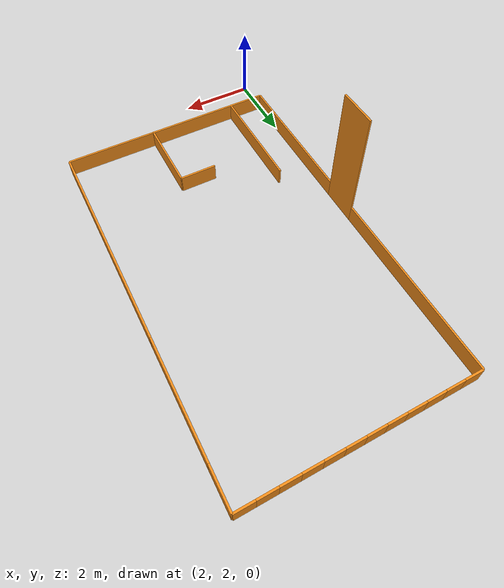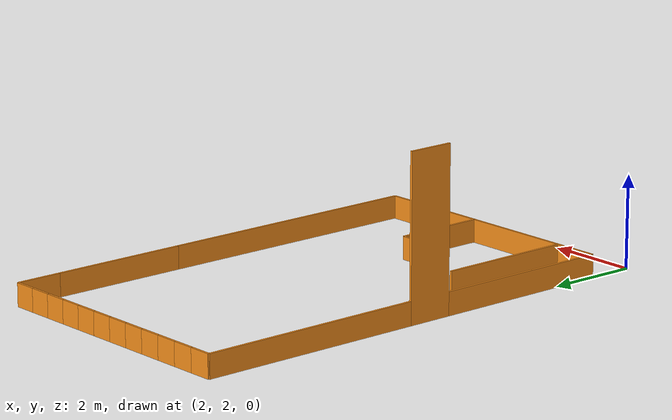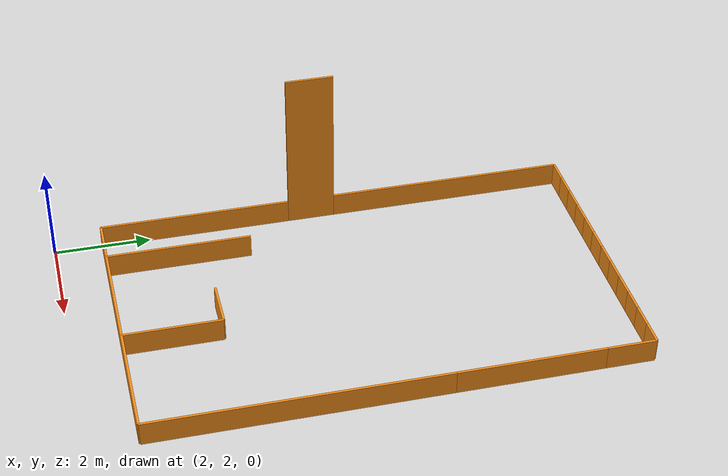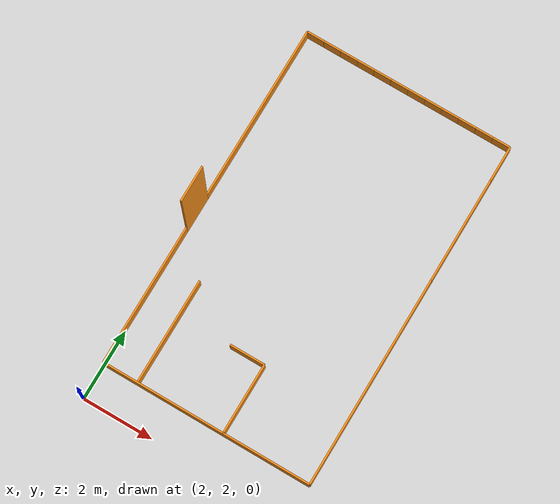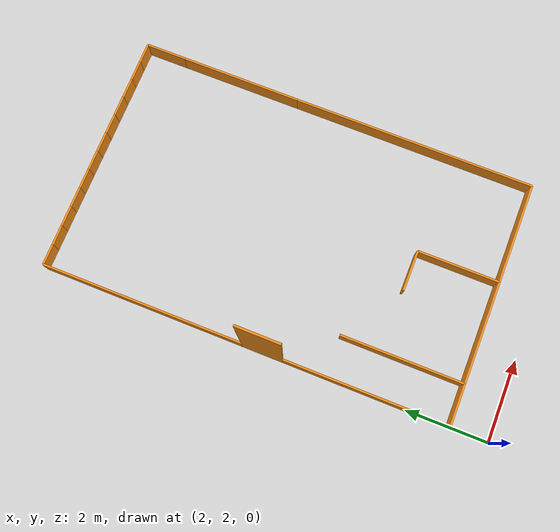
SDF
<sdf version="1.6">
 <world name="default">
  <model name="box_22">
   <pose>2.0 7.5 1.75 0 0 1.5707963267948966</pose>
   <link name="link">
    <inertial>
     <mass>1</mass>
     <inertia><ixx>0</ixx><ixy>0</ixy><ixz>0</ixz><iyy>0</iyy><iyz>0</iyz><izz>0</izz></inertia>
    </inertial>
    <collision name="collision"><geometry><box><size>1.0 0.05 3.5</size></box></geometry></collision>
    <visual name="visual">
     <geometry><box><size>1.0 0.05 3.5</size></box></geometry>
     <material>
      <script><name>Gazebo/Orange</name><uri>file://media/materials/scripts/gazebo.material</uri></script>
     </material>
    </visual>
   </link>
   <static>1</static>
  </model>
  <model name="box_21">
   <pose>5.5 4.0 0.25 0 0 1.5707963267948966</pose>
   <link name="link">
    <inertial>
     <mass>1</mass>
     <inertia><ixx>0</ixx><ixy>0</ixy><ixz>0</ixz><iyy>0</iyy><iyz>0</iyz><izz>0</izz></inertia>
    </inertial>
    <collision name="collision"><geometry><box><size>2.0 0.05 0.5</size></box></geometry></collision>
    <visual name="visual">
     <geometry><box><size>2.0 0.05 0.5</size></box></geometry>
     <material>
      <script><name>Gazebo/Orange</name><uri>file://media/materials/scripts/gazebo.material</uri></script>
     </material>
    </visual>
   </link>
   <static>1</static>
  </model>
  <model name="box_20">
   <pose>5.0 5.0 0.25 0 0 -3.141592653589793</pose>
   <link name="link">
    <inertial>
     <mass>1</mass>
     <inertia><ixx>0</ixx><ixy>0</ixy><ixz>0</ixz><iyy>0</iyy><iyz>0</iyz><izz>0</izz></inertia>
    </inertial>
    <collision name="collision"><geometry><box><size>1.0 0.05 0.5</size></box></geometry></collision>
    <visual name="visual">
     <geometry><box><size>1.0 0.05 0.5</size></box></geometry>
     <material>
      <script><name>Gazebo/Orange</name><uri>file://media/materials/scripts/gazebo.material</uri></script>
     </material>
    </visual>
   </link>
   <static>1</static>
  </model>
  <model name="box_19">
   <pose>3.0 4.5 0.25 0 0 1.5707963267948966</pose>
   <link name="link">
    <inertial>
     <mass>1</mass>
     <inertia><ixx>0</ixx><ixy>0</ixy><ixz>0</ixz><iyy>0</iyy><iyz>0</iyz><izz>0</izz></inertia>
    </inertial>
    <collision name="collision"><geometry><box><size>3.0 0.05 0.5</size></box></geometry></collision>
    <visual name="visual">
     <geometry><box><size>3.0 0.05 0.5</size></box></geometry>
     <material>
      <script><name>Gazebo/Orange</name><uri>file://media/materials/scripts/gazebo.material</uri></script>
     </material>
    </visual>
   </link>
   <static>1</static>
  </model>
  <model name="box_18">
   <pose>2.0 10.5 0.25 0 0 1.5707963267948966</pose>
   <link name="link">
    <inertial>
     <mass>1</mass>
     <inertia><ixx>0</ixx><ixy>0</ixy><ixz>0</ixz><iyy>0</iyy><iyz>0</iyz><izz>0</izz></inertia>
    </inertial>
    <collision name="collision"><geometry><box><size>5.0 0.05 0.5</size></box></geometry></collision>
    <visual name="visual">
     <geometry><box><size>5.0 0.05 0.5</size></box></geometry>
     <material>
      <script><name>Gazebo/Orange</name><uri>file://media/materials/scripts/gazebo.material</uri></script>
     </material>
    </visual>
   </link>
   <static>1</static>
  </model>
  <model name="box_17">
   <pose>2.0 5.0 0.25 0 0 -1.5707963267948966</pose>
   <link name="link">
    <inertial>
     <mass>1</mass>
     <inertia><ixx>0</ixx><ixy>0</ixy><ixz>0</ixz><iyy>0</iyy><iyz>0</iyz><izz>0</izz></inertia>
    </inertial>
    <collision name="collision"><geometry><box><size>4.0 0.05 0.5</size></box></geometry></collision>
    <visual name="visual">
     <geometry><box><size>4.0 0.05 0.5</size></box></geometry>
     <material>
      <script><name>Gazebo/Orange</name><uri>file://media/materials/scripts/gazebo.material</uri></script>
     </material>
    </visual>
   </link>
   <static>1</static>
  </model>
  <model name="box_16">
   <pose>5.0 3.0 0.25 0 0 -0.0</pose>
   <link name="link">
    <inertial>
     <mass>1</mass>
     <inertia><ixx>0</ixx><ixy>0</ixy><ixz>0</ixz><iyy>0</iyy><iyz>0</iyz><izz>0</izz></inertia>
    </inertial>
    <collision name="collision"><geometry><box><size>6.0 0.05 0.5</size></box></geometry></collision>
    <visual name="visual">
     <geometry><box><size>6.0 0.05 0.5</size></box></geometry>
     <material>
      <script><name>Gazebo/Orange</name><uri>file://media/materials/scripts/gazebo.material</uri></script>
     </material>
    </visual>
   </link>
   <static>1</static>
  </model>
  <model name="box_15">
   <pose>8.0 6.0 0.25 0 0 1.5707963267948966</pose>
   <link name="link">
    <inertial>
     <mass>1</mass>
     <inertia><ixx>0</ixx><ixy>0</ixy><ixz>0</ixz><iyy>0</iyy><iyz>0</iyz><izz>0</izz></inertia>
    </inertial>
    <collision name="collision"><geometry><box><size>6.0 0.05 0.5</size></box></geometry></collision>
    <visual name="visual">
     <geometry><box><size>6.0 0.05 0.5</size></box></geometry>
     <material>
      <script><name>Gazebo/Orange</name><uri>file://media/materials/scripts/gazebo.material</uri></script>
     </material>
    </visual>
   </link>
   <static>1</static>
  </model>
  <model name="box_14">
   <pose>8.0 10.5 0.25 0 0 1.5707963267948966</pose>
   <link name="link">
    <inertial>
     <mass>1</mass>
     <inertia><ixx>0</ixx><ixy>0</ixy><ixz>0</ixz><iyy>0</iyy><iyz>0</iyz><izz>0</izz></inertia>
    </inertial>
    <collision name="collision"><geometry><box><size>3.0 0.05 0.5</size></box></geometry></collision>
    <visual name="visual">
     <geometry><box><size>3.0 0.05 0.5</size></box></geometry>
     <material>
      <script><name>Gazebo/Orange</name><uri>file://media/materials/scripts/gazebo.material</uri></script>
     </material>
    </visual>
   </link>
   <static>1</static>
  </model>
  <model name="box_13">
   <pose>8.0 12.5 0.25 0 0 1.5707963267948966</pose>
   <link name="link">
    <inertial>
     <mass>1</mass>
     <inertia><ixx>0</ixx><ixy>0</ixy><ixz>0</ixz><iyy>0</iyy><iyz>0</iyz><izz>0</izz></inertia>
    </inertial>
    <collision name="collision"><geometry><box><size>1.0 0.05 0.5</size></box></geometry></collision>
    <visual name="visual">
     <geometry><box><size>1.0 0.05 0.5</size></box></geometry>
     <material>
      <script><name>Gazebo/Orange</name><uri>file://media/materials/scripts/gazebo.material</uri></script>
     </material>
    </visual>
   </link>
   <static>1</static>
  </model>
  <model name="box_12">
   <pose>7.75 13.0 0.25 0 0 -3.141592653589793</pose>
   <link name="link">
    <inertial>
     <mass>1</mass>
     <inertia><ixx>0</ixx><ixy>0</ixy><ixz>0</ixz><iyy>0</iyy><iyz>0</iyz><izz>0</izz></inertia>
    </inertial>
    <collision name="collision"><geometry><box><size>0.5 0.05 0.5</size></box></geometry></collision>
    <visual name="visual">
     <geometry><box><size>0.5 0.05 0.5</size></box></geometry>
     <material>
      <script><name>Gazebo/Orange</name><uri>file://media/materials/scripts/gazebo.material</uri></script>
     </material>
    </visual>
   </link>
   <static>1</static>
  </model>
  <model name="box_11">
   <pose>7.25 13.0 0.25 0 0 -3.141592653589793</pose>
   <link name="link">
    <inertial>
     <mass>1</mass>
     <inertia><ixx>0</ixx><ixy>0</ixy><ixz>0</ixz><iyy>0</iyy><iyz>0</iyz><izz>0</izz></inertia>
    </inertial>
    <collision name="collision"><geometry><box><size>0.5 0.05 0.5</size></box></geometry></collision>
    <visual name="visual">
     <geometry><box><size>0.5 0.05 0.5</size></box></geometry>
     <material>
      <script><name>Gazebo/Orange</name><uri>file://media/materials/scripts/gazebo.material</uri></script>
     </material>
    </visual>
   </link>
   <static>1</static>
  </model>
  <model name="box_10">
   <pose>6.75 13.0 0.25 0 0 -3.141592653589793</pose>
   <link name="link">
    <inertial>
     <mass>1</mass>
     <inertia><ixx>0</ixx><ixy>0</ixy><ixz>0</ixz><iyy>0</iyy><iyz>0</iyz><izz>0</izz></inertia>
    </inertial>
    <collision name="collision"><geometry><box><size>0.5 0.05 0.5</size></box></geometry></collision>
    <visual name="visual">
     <geometry><box><size>0.5 0.05 0.5</size></box></geometry>
     <material>
      <script><name>Gazebo/Orange</name><uri>file://media/materials/scripts/gazebo.material</uri></script>
     </material>
    </visual>
   </link>
   <static>1</static>
  </model>
  <model name="box_9">
   <pose>6.25 13.0 0.25 0 0 -3.141592653589793</pose>
   <link name="link">
    <inertial>
     <mass>1</mass>
     <inertia><ixx>0</ixx><ixy>0</ixy><ixz>0</ixz><iyy>0</iyy><iyz>0</iyz><izz>0</izz></inertia>
    </inertial>
    <collision name="collision"><geometry><box><size>0.5 0.05 0.5</size></box></geometry></collision>
    <visual name="visual">
     <geometry><box><size>0.5 0.05 0.5</size></box></geometry>
     <material>
      <script><name>Gazebo/Orange</name><uri>file://media/materials/scripts/gazebo.material</uri></script>
     </material>
    </visual>
   </link>
   <static>1</static>
  </model>
  <model name="box_8">
   <pose>5.75 13.0 0.25 0 0 -3.141592653589793</pose>
   <link name="link">
    <inertial>
     <mass>1</mass>
     <inertia><ixx>0</ixx><ixy>0</ixy><ixz>0</ixz><iyy>0</iyy><iyz>0</iyz><izz>0</izz></inertia>
    </inertial>
    <collision name="collision"><geometry><box><size>0.5 0.05 0.5</size></box></geometry></collision>
    <visual name="visual">
     <geometry><box><size>0.5 0.05 0.5</size></box></geometry>
     <material>
      <script><name>Gazebo/Orange</name><uri>file://media/materials/scripts/gazebo.material</uri></script>
     </material>
    </visual>
   </link>
   <static>1</static>
  </model>
  <model name="box_7">
   <pose>5.25 13.0 0.25 0 0 -3.141592653589793</pose>
   <link name="link">
    <inertial>
     <mass>1</mass>
     <inertia><ixx>0</ixx><ixy>0</ixy><ixz>0</ixz><iyy>0</iyy><iyz>0</iyz><izz>0</izz></inertia>
    </inertial>
    <collision name="collision"><geometry><box><size>0.5 0.05 0.5</size></box></geometry></collision>
    <visual name="visual">
     <geometry><box><size>0.5 0.05 0.5</size></box></geometry>
     <material>
      <script><name>Gazebo/Orange</name><uri>file://media/materials/scripts/gazebo.material</uri></script>
     </material>
    </visual>
   </link>
   <static>1</static>
  </model>
  <model name="box_6">
   <pose>4.75 13.0 0.25 0 0 -3.141592653589793</pose>
   <link name="link">
    <inertial>
     <mass>1</mass>
     <inertia><ixx>0</ixx><ixy>0</ixy><ixz>0</ixz><iyy>0</iyy><iyz>0</iyz><izz>0</izz></inertia>
    </inertial>
    <collision name="collision"><geometry><box><size>0.5 0.05 0.5</size></box></geometry></collision>
    <visual name="visual">
     <geometry><box><size>0.5 0.05 0.5</size></box></geometry>
     <material>
      <script><name>Gazebo/Orange</name><uri>file://media/materials/scripts/gazebo.material</uri></script>
     </material>
    </visual>
   </link>
   <static>1</static>
  </model>
  <model name="box_5">
   <pose>4.25 13.0 0.25 0 0 -3.141592653589793</pose>
   <link name="link">
    <inertial>
     <mass>1</mass>
     <inertia><ixx>0</ixx><ixy>0</ixy><ixz>0</ixz><iyy>0</iyy><iyz>0</iyz><izz>0</izz></inertia>
    </inertial>
    <collision name="collision"><geometry><box><size>0.5 0.05 0.5</size></box></geometry></collision>
    <visual name="visual">
     <geometry><box><size>0.5 0.05 0.5</size></box></geometry>
     <material>
      <script><name>Gazebo/Orange</name><uri>file://media/materials/scripts/gazebo.material</uri></script>
     </material>
    </visual>
   </link>
   <static>1</static>
  </model>
  <model name="box_4">
   <pose>3.75 13.0 0.25 0 0 -3.141592653589793</pose>
   <link name="link">
    <inertial>
     <mass>1</mass>
     <inertia><ixx>0</ixx><ixy>0</ixy><ixz>0</ixz><iyy>0</iyy><iyz>0</iyz><izz>0</izz></inertia>
    </inertial>
    <collision name="collision"><geometry><box><size>0.5 0.05 0.5</size></box></geometry></collision>
    <visual name="visual">
     <geometry><box><size>0.5 0.05 0.5</size></box></geometry>
     <material>
      <script><name>Gazebo/Orange</name><uri>file://media/materials/scripts/gazebo.material</uri></script>
     </material>
    </visual>
   </link>
   <static>1</static>
  </model>
  <model name="box_3">
   <pose>3.25 13.0 0.25 0 0 -3.141592653589793</pose>
   <link name="link">
    <inertial>
     <mass>1</mass>
     <inertia><ixx>0</ixx><ixy>0</ixy><ixz>0</ixz><iyy>0</iyy><iyz>0</iyz><izz>0</izz></inertia>
    </inertial>
    <collision name="collision"><geometry><box><size>0.5 0.05 0.5</size></box></geometry></collision>
    <visual name="visual">
     <geometry><box><size>0.5 0.05 0.5</size></box></geometry>
     <material>
      <script><name>Gazebo/Orange</name><uri>file://media/materials/scripts/gazebo.material</uri></script>
     </material>
    </visual>
   </link>
   <static>1</static>
  </model>
  <model name="box_2">
   <pose>2.75 13.0 0.25 0 0 -3.141592653589793</pose>
   <link name="link">
    <inertial>
     <mass>1</mass>
     <inertia><ixx>0</ixx><ixy>0</ixy><ixz>0</ixz><iyy>0</iyy><iyz>0</iyz><izz>0</izz></inertia>
    </inertial>
    <collision name="collision"><geometry><box><size>0.5 0.05 0.5</size></box></geometry></collision>
    <visual name="visual">
     <geometry><box><size>0.5 0.05 0.5</size></box></geometry>
     <material>
      <script><name>Gazebo/Orange</name><uri>file://media/materials/scripts/gazebo.material</uri></script>
     </material>
    </visual>
   </link>
   <static>1</static>
  </model>
  <model name="box_1">
   <pose>2.25 13.0 0.25 0 0 -3.141592653589793</pose>
   <link name="link">
    <inertial>
     <mass>1</mass>
     <inertia><ixx>0</ixx><ixy>0</ixy><ixz>0</ixz><iyy>0</iyy><iyz>0</iyz><izz>0</izz></inertia>
    </inertial>
    <collision name="collision"><geometry><box><size>0.5 0.05 0.5</size></box></geometry></collision>
    <visual name="visual">
     <geometry><box><size>0.5 0.05 0.5</size></box></geometry>
     <material>
      <script><name>Gazebo/Orange</name><uri>file://media/materials/scripts/gazebo.material</uri></script>
     </material>
    </visual>
   </link>
   <static>1</static>
  </model>
  <light name="user_point_light_0" type="point">
   <pose>0 0 5 0 -0 0</pose>
   <diffuse>0.5 0.5 0.5 1</diffuse>
   <specular>0.1 0.1 0.1 1</specular>
   <attenuation>
    <range>1000</range>
    <constant>0.05</constant>
    <linear>0.01</linear>
    <quadratic>0.001</quadratic>
   </attenuation>
   <cast_shadows>0</cast_shadows>
   <direction>0 0 -1</direction>
  </light>
  <light name="user_point_light_1" type="point">
   <pose>20 0 5 0 -0 0</pose>
   <diffuse>0.5 0.5 0.5 1</diffuse>
   <specular>0.1 0.1 0.1 1</specular>
   <attenuation>
    <range>1000</range>
    <constant>0.05</constant>
    <linear>0.01</linear>
    <quadratic>0.001</quadratic>
   </attenuation>
   <cast_shadows>0</cast_shadows>
   <direction>0 0 -1</direction>
  </light>
  <light name="user_point_light_2" type="point">
   <pose>0 20 5 0 -0 0</pose>
   <diffuse>0.5 0.5 0.5 1</diffuse>
   <specular>0.1 0.1 0.1 1</specular>
   <attenuation>
    <range>1000</range>
    <constant>0.05</constant>
    <linear>0.01</linear>
    <quadratic>0.001</quadratic>
   </attenuation>
   <cast_shadows>0</cast_shadows>
   <direction>0 0 -1</direction>
  </light>
  <light name="user_point_light_3" type="point">
   <pose>20 20 5 0 -0 0</pose>
   <diffuse>0.5 0.5 0.5 1</diffuse>
   <specular>0.1 0.1 0.1 1</specular>
   <attenuation>
    <range>1000</range>
    <constant>0.05</constant>
    <linear>0.01</linear>
    <quadratic>0.001</quadratic>
   </attenuation>
   <cast_shadows>0</cast_shadows>
   <direction>0 0 -1</direction>
  </light>
  <light name="user_point_light_4" type="point">
   <pose>10 10 5 0 -0 0</pose>
   <diffuse>0.5 0.5 0.5 1</diffuse>
   <specular>0.1 0.1 0.1 1</specular>
   <attenuation>
    <range>1000</range>
    <constant>0.05</constant>
    <linear>0.01</linear>
    <quadratic>0.001</quadratic>
   </attenuation>
   <cast_shadows>0</cast_shadows>
   <direction>0 0 -1</direction>
  </light>
  <gravity>0 0 -9.8</gravity>
  <magnetic_field>6e-06 2.3e-05 -4.2e-05</magnetic_field>
  <atmosphere type="adiabatic"/>
  <physics name="default_physics" default="0" type="ode">
   <max_step_size>0.001</max_step_size>
   <real_time_factor>1</real_time_factor>
   <real_time_update_rate>1000</real_time_update_rate>
  </physics>
  <scene><ambient>0.4 0.4 0.4 1</ambient><background>0.7 0.7 0.7 1</background><shadows>1</shadows></scene>
  <audio><device>default</device></audio>
  <spherical_coordinates>
   <surface_model>EARTH_WGS84</surface_model>
   <latitude_deg>0</latitude_deg>
   <longitude_deg>0</longitude_deg>
   <elevation>0</elevation>
   <heading_deg>0</heading_deg>
  </spherical_coordinates>
 </world>
</sdf>
